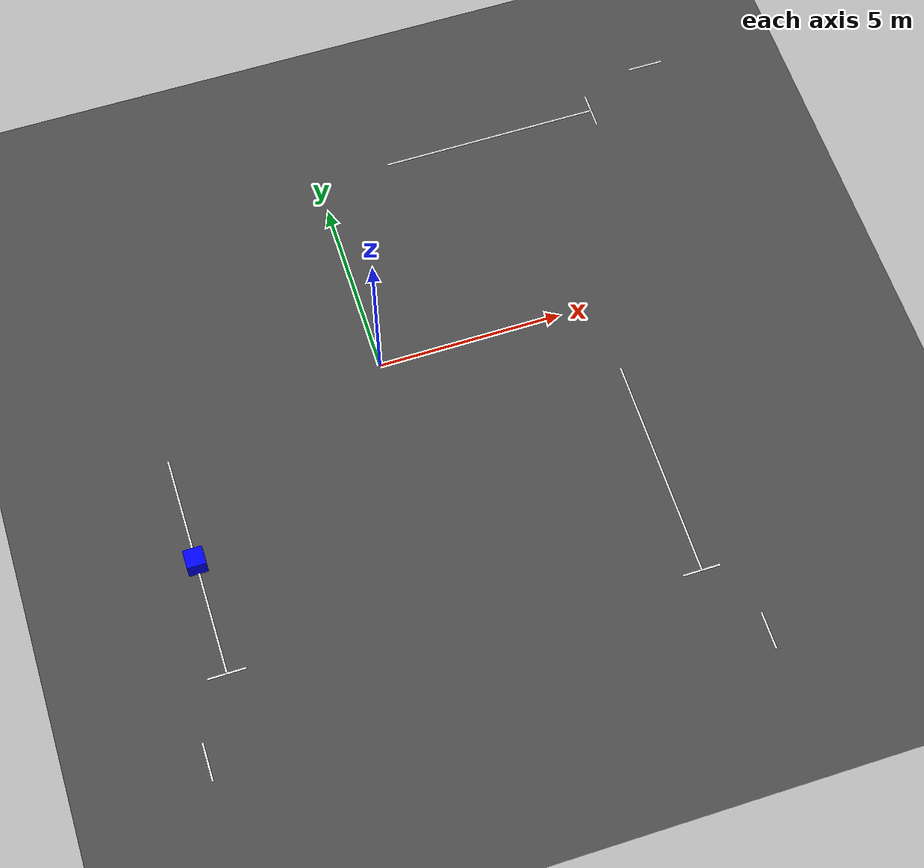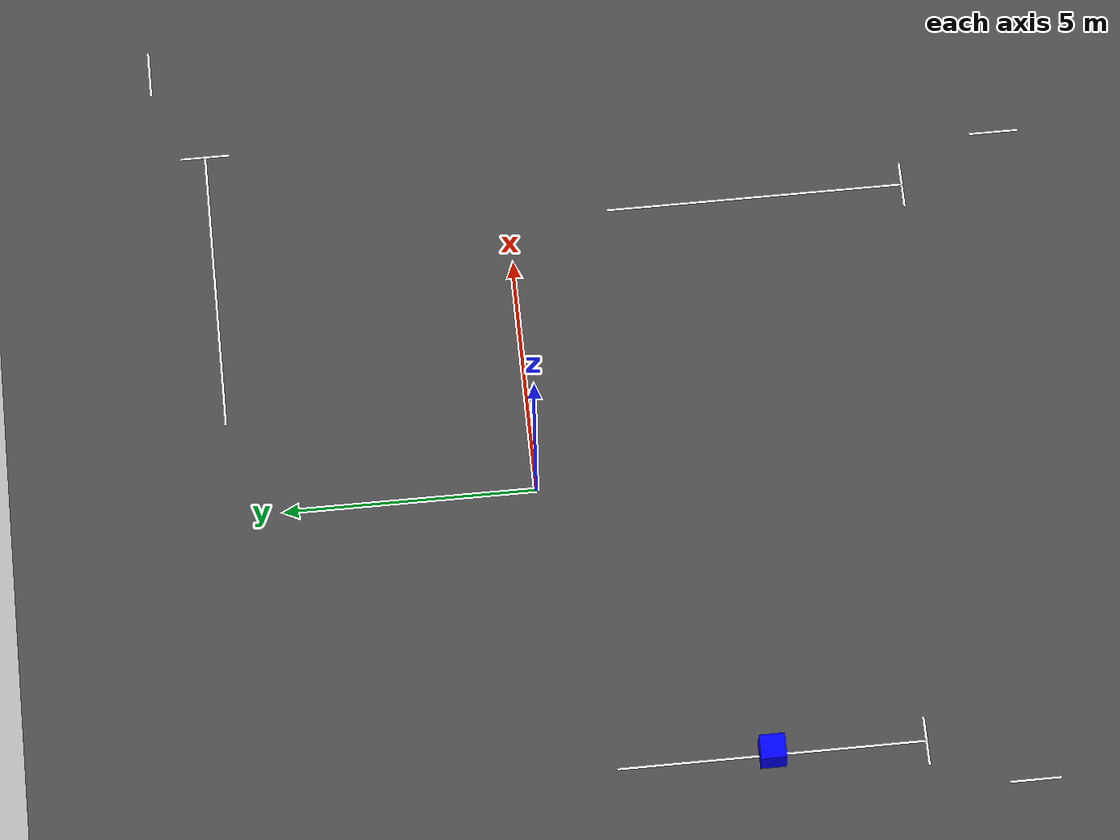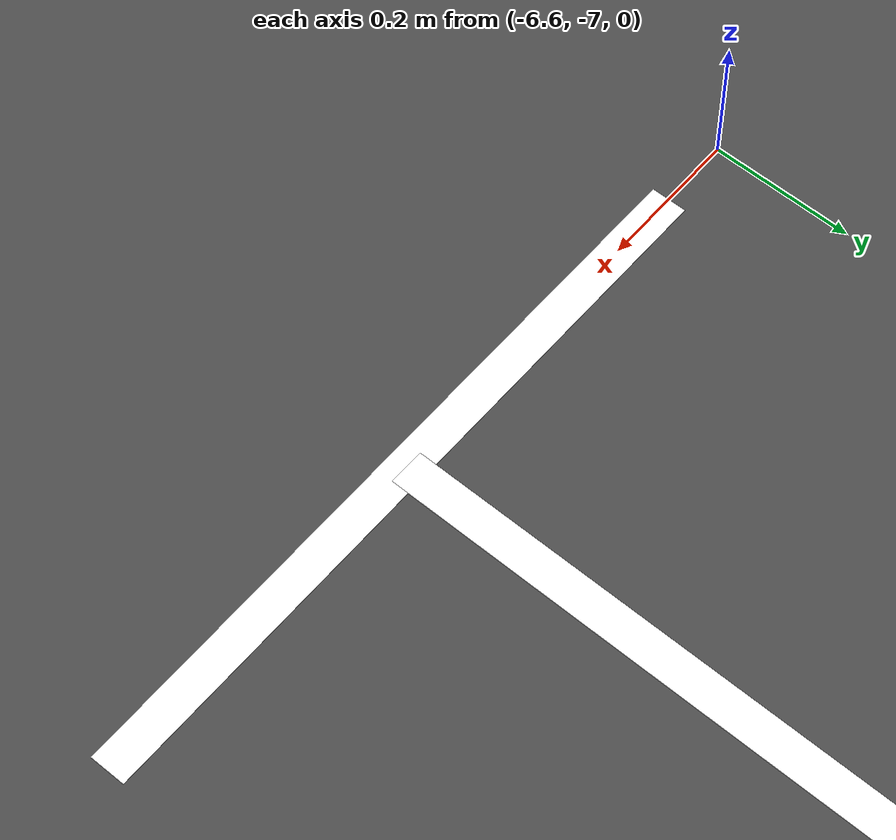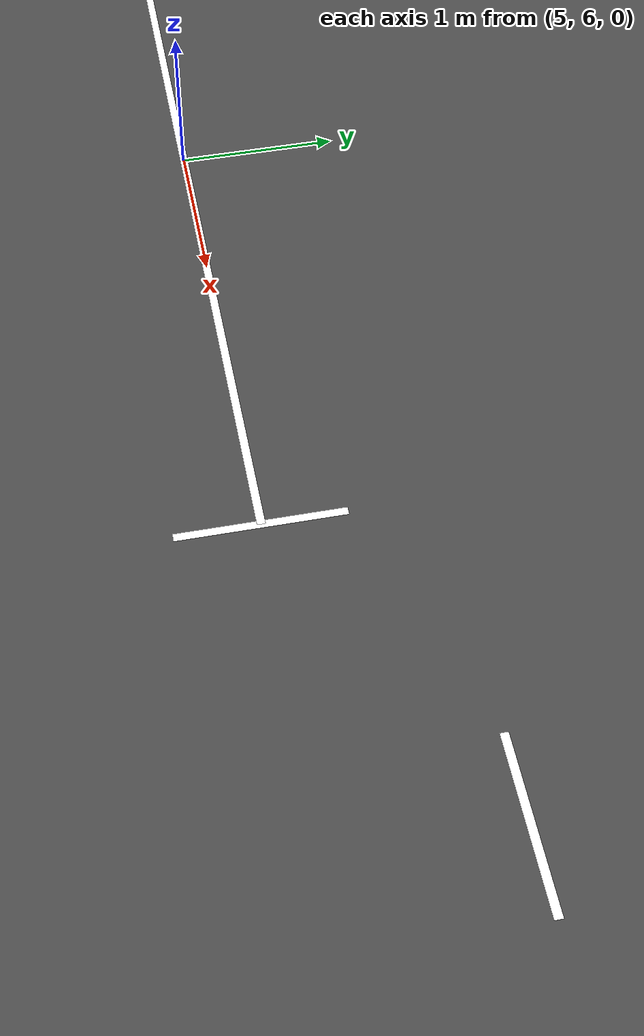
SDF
<sdf version="1.6">
 <world name="diff_bot">
  <physics name="2.5ms" type="ignored">
   <max_step_size>2.5e-3</max_step_size>
   <real_time_factor>1</real_time_factor>
  </physics>
  <scene>
   <ambient>0.2 0.2 0.2 1</ambient>
   <background>0.8 0.8 0.8 1</background>
   <grid>true</grid>
   <shadows>true</shadows>
  </scene>
  <plugin filename="libignition-gazebo-physics-system.so" name="ignition::gazebo::systems::Physics"/>
  <plugin filename="libignition-gazebo-sensors-system.so" name="ignition::gazebo::systems::Sensors">
   <render_engine>ogre2</render_engine>
  </plugin>
  <plugin filename="libignition-gazebo-user-commands-system.so" name="ignition::gazebo::systems::UserCommands"/>
  <plugin filename="libignition-gazebo-scene-broadcaster-system.so" name="ignition::gazebo::systems::SceneBroadcaster"/>
  <plugin filename="ignition-gazebo-contact-system" name="ignition::gazebo::systems::Contact"/>
  <plugin filename="libignition-gazebo-imu-system.so" name="ignition::gazebo::systems::Imu"/>
  <plugin filename="ignition-gazebo-magnetometer-system" name="ignition::gazebo::systems::Magnetometer"/>
  <plugin filename="libignition-gazebo-triggered-publisher-system.so" name="ignition::gazebo::systems::TriggeredPublisher">
   <input type="ignition.msgs.Int32" topic="/keyboard/keypress"><match field="data">87</match></input>
   <output type="ignition.msgs.Twist" topic="/model/diff_bot/cmd_vel">linear: {x: 0.5}</output>
  </plugin>
  <plugin filename="libignition-gazebo-triggered-publisher-system.so" name="ignition::gazebo::systems::TriggeredPublisher">
   <input type="ignition.msgs.Int32" topic="/keyboard/keypress"><match field="data">83</match></input>
   <output type="ignition.msgs.Twist" topic="/model/diff_bot/cmd_vel">linear: {x: -0.3}</output>
  </plugin>
  <plugin filename="libignition-gazebo-triggered-publisher-system.so" name="ignition::gazebo::systems::TriggeredPublisher">
   <input type="ignition.msgs.Int32" topic="/keyboard/keypress"><match field="data">65</match></input>
   <output type="ignition.msgs.Twist" topic="/model/diff_bot/cmd_vel">angular: {z: 0.8}</output>
  </plugin>
  <plugin filename="libignition-gazebo-triggered-publisher-system.so" name="ignition::gazebo::systems::TriggeredPublisher">
   <input type="ignition.msgs.Int32" topic="/keyboard/keypress"><match field="data">68</match></input>
   <output type="ignition.msgs.Twist" topic="/model/diff_bot/cmd_vel">angular: {z: -0.8}</output>
  </plugin>
  <plugin filename="libignition-gazebo-triggered-publisher-system.so" name="ignition::gazebo::systems::TriggeredPublisher">
   <input type="ignition.msgs.Int32" topic="/keyboard/keypress"><match field="data">82</match></input>
   <output type="ignition.msgs.Twist" topic="/model/diff_bot/cmd_vel">linear: {x: 0.0}, angular: {z: 0.0}</output>
  </plugin>
  <light type="directional" name="sun">
   <pose>0 0 10 0 0 0</pose>
   <diffuse>0.8 0.8 0.8 1</diffuse>
   <specular>0.2 0.2 0.2 1</specular>
   <attenuation>
    <range>1000</range>
    <linear>0.01</linear>
    <constant>0.9</constant>
    <quadratic>0.001</quadratic>
   </attenuation>
   <direction>-0.5 0.1 -0.9</direction>
  </light>
  <model name="vertical_T_line_1">
   <static>true</static>
   <pose>5 6 0 0 0 0</pose>
   <link name="T_line1">
    <visual name="visual">
     <geometry><box><size>6.0 0.05 0.001</size></box></geometry>
     <material>
      <ambient>1.0 1.0 1.0 1</ambient>
      <diffuse>1.0 1.0 1.0 1</diffuse>
      <specular>1.0 1.0 1.0 1</specular>
     </material>
    </visual>
   </link>
  </model>
  <model name="horizontal_T_line1">
   <static>true</static>
   <pose>8 6 0 0 0 0</pose>
   <link name="T_line1">
    <visual name="visual">
     <geometry><box><size>0.05 1.0 0.001</size></box></geometry>
     <material>
      <ambient>1.0 1.0 1.0 1</ambient>
      <diffuse>1.0 1.0 1.0 1</diffuse>
      <specular>1.0 1.0 1.0 1</specular>
     </material>
    </visual>
   </link>
  </model>
  <model name="pause_line1">
   <static>true</static>
   <pose>10 7 0 0 0 0</pose>
   <link name="pause_line1">
    <visual name="visual">
     <geometry><box><size>1.0 0.05 0.001</size></box></geometry>
     <material>
      <ambient>1.0 1.0 1.0 1</ambient>
      <diffuse>1.0 1.0 1.0 1</diffuse>
      <specular>1.0 1.0 1.0 1</specular>
     </material>
    </visual>
   </link>
  </model>
  <model name="vertical_T_line_2">
   <static>true</static>
   <pose>6 -5 0 0 0 1.57</pose>
   <link name="T_line2">
    <visual name="visual">
     <geometry><box><size>6.0 0.05 0.001</size></box></geometry>
     <material>
      <ambient>1.0 1.0 1.0 1</ambient>
      <diffuse>1.0 1.0 1.0 1</diffuse>
      <specular>1.0 1.0 1.0 1</specular>
     </material>
    </visual>
   </link>
  </model>
  <model name="horizontal_T_line2">
   <static>true</static>
   <pose>6 -8 0 0 0 1.57</pose>
   <link name="T_line2">
    <visual name="visual">
     <geometry><box><size>0.05 1.0 0.001</size></box></geometry>
     <material>
      <ambient>1.0 1.0 1.0 1</ambient>
      <diffuse>1.0 1.0 1.0 1</diffuse>
      <specular>1.0 1.0 1.0 1</specular>
     </material>
    </visual>
   </link>
  </model>
  <model name="pause_line2">
   <static>true</static>
   <pose>7 -10 0 0 0 1.57</pose>
   <link name="pause_line2">
    <visual name="visual">
     <geometry><box><size>1.0 0.05 0.001</size></box></geometry>
     <material>
      <ambient>1.0 1.0 1.0 1</ambient>
      <diffuse>1.0 1.0 1.0 1</diffuse>
      <specular>1.0 1.0 1.0 1</specular>
     </material>
    </visual>
   </link>
  </model>
  <model name="vertical_T_line_3">
   <static>true</static>
   <pose>-6 -4 0 0 0 1.57</pose>
   <link name="T_line3">
    <visual name="visual">
     <geometry><box><size>6.0 0.05 0.001</size></box></geometry>
     <material>
      <ambient>1.0 1.0 1.0 1</ambient>
      <diffuse>1.0 1.0 1.0 1</diffuse>
      <specular>1.0 1.0 1.0 1</specular>
     </material>
    </visual>
   </link>
  </model>
  <model name="horizontal_T_line3">
   <static>true</static>
   <pose>-6 -7 0 0 0 1.57</pose>
   <link name="T_line2">
    <visual name="visual">
     <geometry><box><size>0.05 1.0 0.001</size></box></geometry>
     <material>
      <ambient>1.0 1.0 1.0 1</ambient>
      <diffuse>1.0 1.0 1.0 1</diffuse>
      <specular>1.0 1.0 1.0 1</specular>
     </material>
    </visual>
   </link>
  </model>
  <model name="pause_line3">
   <static>true</static>
   <pose>-7 -9 0 0 0 1.57</pose>
   <link name="pause_line3">
    <visual name="visual">
     <geometry><box><size>1.0 0.05 0.001</size></box></geometry>
     <material>
      <ambient>1.0 1.0 1.0 1</ambient>
      <diffuse>1.0 1.0 1.0 1</diffuse>
      <specular>1.0 1.0 1.0 1</specular>
     </material>
    </visual>
   </link>
  </model>
  <model name="obstacle_block">
   <static>true</static>
   <pose>-6 -4 0 0 0 0</pose>
   <link name="obstacle_block">
    <visual name="visual">
     <geometry><box><size>0.5 0.5 1.0</size></box></geometry>
     <material>
      <ambient>1.0 1.0 1.0 1</ambient>
      <diffuse>0.0 0.0 1.0 1</diffuse>
      <specular>1.0 1.0 1.0 1</specular>
     </material>
    </visual>
   </link>
  </model>
  <model name="ground_plane">
   <static>true</static>
   <link name="link">
    <collision name="collision"><geometry><plane><normal>0 0 1</normal></plane></geometry></collision>
    <visual name="visual">
     <geometry><plane><normal>0 0 1</normal><size>100 100</size></plane></geometry>
     <material>
      <ambient>0.3 0.3 0.3 1</ambient>
      <diffuse>0.3 0.3 0.3 1</diffuse>
      <specular>0.3 0.3 0.3 1</specular>
     </material>
    </visual>
   </link>
  </model>
 </world>
</sdf>
